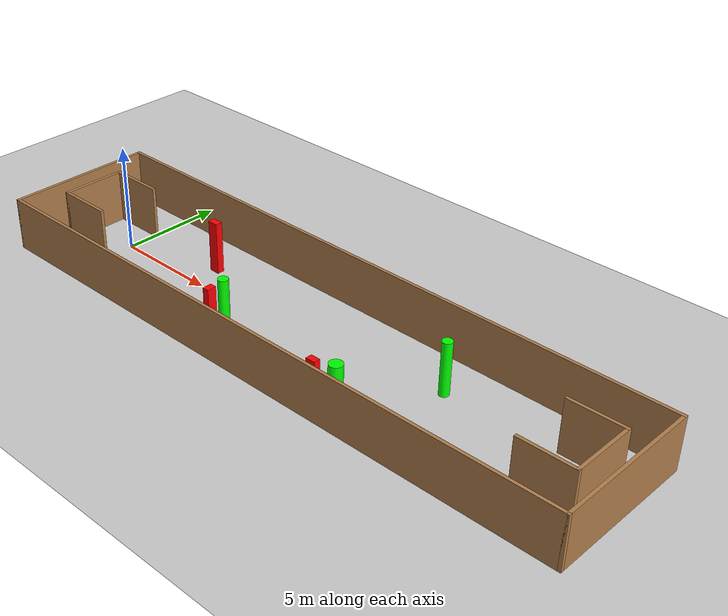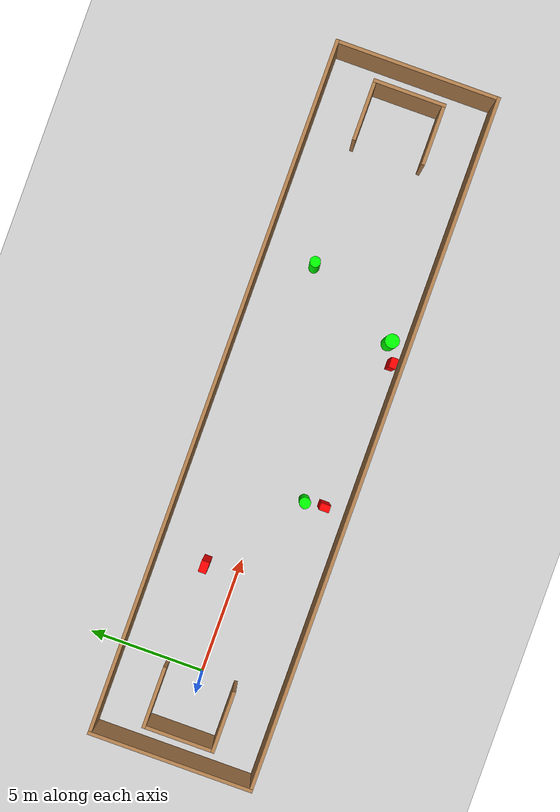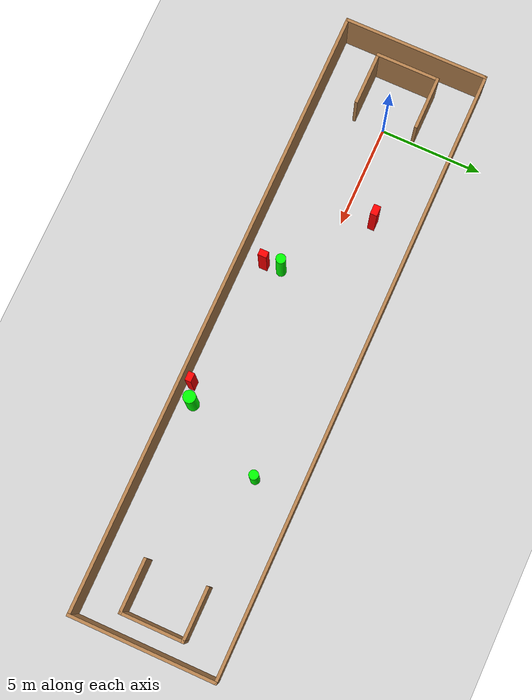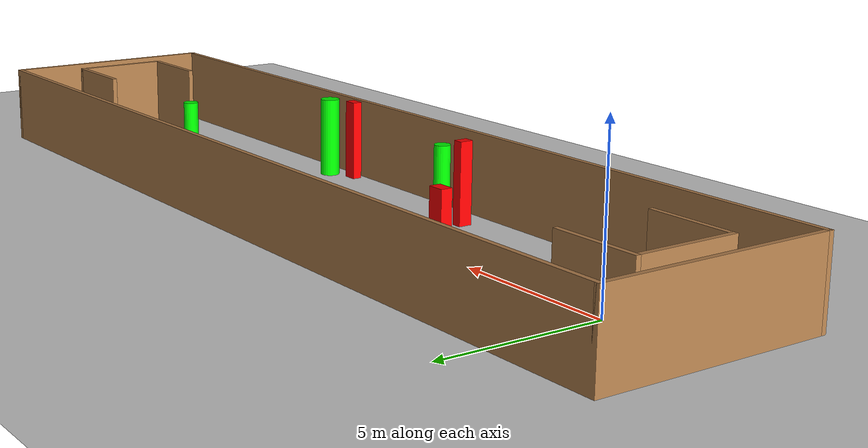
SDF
<sdf version="1.7">
 <world name="default">
  <light name="sun" type="directional">
   <pose>0 0 10 0 -0 0</pose>
   <diffuse>0.8 0.8 0.8 1</diffuse>
   <specular>0.2 0.2 0.2 1</specular>
   <attenuation>
    <range>1000</range>
    <constant>0.9</constant>
    <linear>0.01</linear>
    <quadratic>0.001</quadratic>
   </attenuation>
   <direction>-0.5 0.1 -0.9</direction>
   <spot><inner_angle>0</inner_angle><outer_angle>0</outer_angle><falloff>0</falloff></spot>
  </light>
  <model name="ground_plane">
   <static>1</static>
   <link name="link">
    <collision name="collision">
     <geometry><plane><normal>0 0 1</normal><size>100 100</size></plane></geometry>
     <surface>
      <contact><collide_bitmask>65535</collide_bitmask></contact>
      <friction><ode><mu>100</mu><mu2>50</mu2></ode></friction>
     </surface>
    </collision>
    <visual name="visual">
     <cast_shadows>0</cast_shadows>
     <geometry><plane><normal>0 0 1</normal><size>100 100</size></plane></geometry>
     <material>
      <script><uri>file://media/materials/scripts/gazebo.material</uri><name>Gazebo/Grey</name></script>
     </material>
    </visual>
   </link>
  </model>
  <gravity>0 0 -9.8</gravity>
  <magnetic_field>6e-06 2.3e-05 -4.2e-05</magnetic_field>
  <atmosphere type="adiabatic"/>
  <physics type="ode">
   <max_step_size>0.001</max_step_size>
   <real_time_factor>1</real_time_factor>
   <real_time_update_rate>1000</real_time_update_rate>
  </physics>
  <scene><ambient>0.4 0.4 0.4 1</ambient><background>0.7 0.7 0.7 1</background><shadows>1</shadows></scene>
  <spherical_coordinates>
   <surface_model>EARTH_WGS84</surface_model>
   <latitude_deg>0</latitude_deg>
   <longitude_deg>0</longitude_deg>
   <elevation>0</elevation>
   <heading_deg>0</heading_deg>
  </spherical_coordinates>
  <model name="my_base_walls">
   <link name="Wall_0">
    <collision name="Wall_0_Collision">
     <geometry><box><size>7.15 0.15 2.5</size></box></geometry>
     <pose>0 0 1.25 0 -0 0</pose>
    </collision>
    <visual name="Wall_0_Visual">
     <pose>0 0 1.25 0 -0 0</pose>
     <geometry><box><size>7.15 0.15 2.5</size></box></geometry>
     <material>
      <script><uri>file://media/materials/scripts/gazebo.material</uri><name>Gazebo/Wood</name></script>
      <ambient>1 1 1 1</ambient>
     </material>
     <meta><layer>0</layer></meta>
    </visual>
    <pose>-15 0 0 0 -0 1.5708</pose>
   </link>
   <link name="Wall_10">
    <collision name="Wall_10_Collision">
     <geometry><box><size>2.65 0.15 2.5</size></box></geometry>
     <pose>0 0 1.25 0 -0 0</pose>
    </collision>
    <visual name="Wall_10_Visual">
     <pose>0 0 1.25 0 -0 0</pose>
     <geometry><box><size>2.65 0.15 2.5</size></box></geometry>
     <material>
      <script><uri>file://media/materials/scripts/gazebo.material</uri><name>Gazebo/Wood</name></script>
      <ambient>1 1 1 1</ambient>
     </material>
     <meta><layer>0</layer></meta>
    </visual>
    <pose>-12.75 -1.5 0 0 -0 0</pose>
   </link>
   <link name="Wall_12">
    <collision name="Wall_12_Collision">
     <geometry><box><size>2.65 0.15 2.5</size></box></geometry>
     <pose>0 0 1.25 0 -0 0</pose>
    </collision>
    <visual name="Wall_12_Visual">
     <pose>0 0 1.25 0 -0 0</pose>
     <geometry><box><size>2.65 0.15 2.5</size></box></geometry>
     <material>
      <script><uri>file://media/materials/scripts/gazebo.material</uri><name>Gazebo/Wood</name></script>
      <ambient>1 1 1 1</ambient>
     </material>
     <meta><layer>0</layer></meta>
    </visual>
    <pose>-12.75 1.5 0 0 -0 0</pose>
   </link>
   <link name="Wall_14">
    <collision name="Wall_14_Collision">
     <geometry><box><size>3.15 0.15 2.5</size></box></geometry>
     <pose>0 0 1.25 0 -0 0</pose>
    </collision>
    <visual name="Wall_14_Visual">
     <pose>0 0 1.25 0 -0 0</pose>
     <geometry><box><size>3.15 0.15 2.5</size></box></geometry>
     <material>
      <script><uri>file://media/materials/scripts/gazebo.material</uri><name>Gazebo/Wood</name></script>
      <ambient>1 1 1 1</ambient>
     </material>
     <meta><layer>0</layer></meta>
    </visual>
    <pose>14 0 0 0 -0 -1.5708</pose>
   </link>
   <link name="Wall_15">
    <collision name="Wall_15_Collision">
     <geometry><box><size>2.65 0.15 2.5</size></box></geometry>
     <pose>0 0 1.25 0 -0 0</pose>
    </collision>
    <visual name="Wall_15_Visual">
     <pose>0 0 1.25 0 -0 0</pose>
     <geometry><box><size>2.65 0.15 2.5</size></box></geometry>
     <material>
      <script><uri>file://media/materials/scripts/gazebo.material</uri><name>Gazebo/Wood</name></script>
      <ambient>1 1 1 1</ambient>
     </material>
     <meta><layer>0</layer></meta>
    </visual>
    <pose>12.75 -1.5 0 0 -0 3.14159</pose>
   </link>
   <link name="Wall_17">
    <collision name="Wall_17_Collision">
     <geometry><box><size>2.65 0.15 2.5</size></box></geometry>
     <pose>0 0 1.25 0 -0 0</pose>
    </collision>
    <visual name="Wall_17_Visual">
     <pose>0 0 1.25 0 -0 0</pose>
     <geometry><box><size>2.65 0.15 2.5</size></box></geometry>
     <material>
      <script><uri>file://media/materials/scripts/gazebo.material</uri><name>Gazebo/Wood</name></script>
      <ambient>1 1 1 1</ambient>
     </material>
     <meta><layer>0</layer></meta>
    </visual>
    <pose>12.75 1.5 0 0 -0 3.14159</pose>
   </link>
   <link name="Wall_2">
    <collision name="Wall_2_Collision">
     <geometry><box><size>30.15 0.15 2.5</size></box></geometry>
     <pose>0 0 1.25 0 -0 0</pose>
    </collision>
    <visual name="Wall_2_Visual">
     <pose>0 0 1.25 0 -0 0</pose>
     <geometry><box><size>30.15 0.15 2.5</size></box></geometry>
     <material>
      <script><uri>file://media/materials/scripts/gazebo.material</uri><name>Gazebo/Wood</name></script>
      <ambient>1 1 1 1</ambient>
     </material>
     <meta><layer>0</layer></meta>
    </visual>
    <pose>-0 -3.5 0 0 -0 0</pose>
   </link>
   <link name="Wall_4">
    <collision name="Wall_4_Collision">
     <geometry><box><size>30.15 0.15 2.5</size></box></geometry>
     <pose>0 0 1.25 0 -0 0</pose>
    </collision>
    <visual name="Wall_4_Visual">
     <pose>0 0 1.25 0 -0 0</pose>
     <geometry><box><size>30.15 0.15 2.5</size></box></geometry>
     <material>
      <script><uri>file://media/materials/scripts/gazebo.material</uri><name>Gazebo/Wood</name></script>
      <ambient>1 1 1 1</ambient>
     </material>
     <meta><layer>0</layer></meta>
    </visual>
    <pose>-0 3.5 0 0 -0 0</pose>
   </link>
   <link name="Wall_6">
    <collision name="Wall_6_Collision">
     <geometry><box><size>7.15 0.15 2.5</size></box></geometry>
     <pose>0 0 1.25 0 -0 0</pose>
    </collision>
    <visual name="Wall_6_Visual">
     <pose>0 0 1.25 0 -0 0</pose>
     <geometry><box><size>7.15 0.15 2.5</size></box></geometry>
     <material>
      <script><uri>file://media/materials/scripts/gazebo.material</uri><name>Gazebo/Wood</name></script>
      <ambient>1 1 1 1</ambient>
     </material>
     <meta><layer>0</layer></meta>
    </visual>
    <pose>15 0 0 0 -0 -1.5708</pose>
   </link>
   <link name="Wall_9">
    <collision name="Wall_9_Collision">
     <geometry><box><size>3.15 0.15 2.5</size></box></geometry>
     <pose>0 0 1.25 0 -0 0</pose>
    </collision>
    <visual name="Wall_9_Visual">
     <pose>0 0 1.25 0 -0 0</pose>
     <geometry><box><size>3.15 0.15 2.5</size></box></geometry>
     <material>
      <script><uri>file://media/materials/scripts/gazebo.material</uri><name>Gazebo/Wood</name></script>
      <ambient>1 1 1 1</ambient>
     </material>
     <meta><layer>0</layer></meta>
    </visual>
    <pose>-14 0 0 0 -0 -1.5708</pose>
   </link>
   <static>1</static>
   <pose>11.5 0 0 0 -0 0</pose>
  </model>
  <model name="cylinder1">
   <static>1</static>
   <link name="link">
    <inertial>
     <mass>1</mass>
     <inertia><ixx>0.5</ixx><ixy>0</ixy><ixz>0</ixz><iyy>0.5</iyy><iyz>0</iyz><izz>1</izz></inertia>
    </inertial>
    <collision name="collision">
     <geometry><cylinder><radius>0.3026384209840558</radius><length>2.5</length></cylinder></geometry>
    </collision>
    <visual name="visual">
     <geometry><cylinder><radius>0.3026384209840558</radius><length>2.5</length></cylinder></geometry>
     <material>
      <ambient>0 1 0 1</ambient>
      <diffuse>0 1 0 1</diffuse>
      <specular>0.1 0.1 0.1 1</specular>
      <emissive>0 0 0 0</emissive>
     </material>
    </visual>
   </link>
   <pose>15.728955174389275 -2.745362397604776 1.25 0 0 0</pose>
  </model>
  <model name="cylinder2">
   <static>1</static>
   <link name="link">
    <inertial>
     <mass>1</mass>
     <inertia><ixx>0.5</ixx><ixy>0</ixy><ixz>0</ixz><iyy>0.5</iyy><iyz>0</iyz><izz>1</izz></inertia>
    </inertial>
    <collision name="collision">
     <geometry><cylinder><radius>0.22928234608246706</radius><length>2.5</length></cylinder></geometry>
    </collision>
    <visual name="visual">
     <geometry><cylinder><radius>0.22928234608246706</radius><length>2.5</length></cylinder></geometry>
     <material>
      <ambient>0 1 0 1</ambient>
      <diffuse>0 1 0 1</diffuse>
      <specular>0.1 0.1 0.1 1</specular>
      <emissive>0 0 0 0</emissive>
     </material>
    </visual>
   </link>
   <pose>17.71841221162075 1.3055636877647752 1.25 0 0 0</pose>
  </model>
  <model name="cylinder3">
   <static>1</static>
   <link name="link">
    <inertial>
     <mass>1</mass>
     <inertia><ixx>0.5</ixx><ixy>0</ixy><ixz>0</ixz><iyy>0.5</iyy><iyz>0</iyz><izz>1</izz></inertia>
    </inertial>
    <collision name="collision">
     <geometry><cylinder><radius>0.23959691132447097</radius><length>2.5</length></cylinder></geometry>
    </collision>
    <visual name="visual">
     <geometry><cylinder><radius>0.23959691132447097</radius><length>2.5</length></cylinder></geometry>
     <material>
      <ambient>0 1 0 1</ambient>
      <diffuse>0 1 0 1</diffuse>
      <specular>0.1 0.1 0.1 1</specular>
      <emissive>0 0 0 0</emissive>
     </material>
    </visual>
   </link>
   <pose>8.301963356561457 -1.6242512492918983 1.25 0 0 0</pose>
  </model>
  <model name="box1">
   <static>1</static>
   <link name="link">
    <inertial>
     <mass>1</mass>
     <inertia><ixx>0.083</ixx><ixy>0</ixy><ixz>0</ixz><iyy>0.083</iyy><iyz>0</iyz><izz>0.083</izz></inertia>
    </inertial>
    <collision name="collision">
     <geometry><box><size>0.4383946003774381 0.3002589886790101 2.5</size></box></geometry>
    </collision>
    <visual name="visual">
     <geometry><box><size>0.4383946003774381 0.3002589886790101 2.5</size></box></geometry>
     <material>
      <ambient>1 0 0 1</ambient>
      <diffuse>1 0 0 1</diffuse>
      <specular>0.1 0.1 0.1 1</specular>
      <emissive>0 0 0 0</emissive>
     </material>
    </visual>
    <sensor name="my_contact" type="contact">
     <contact><collision>box_collision</collision><topic>__default_topic__</topic></contact>
    </sensor>
   </link>
   <pose>14.899516129271154 -3.1087200816870793 1.25 0 0 0</pose>
  </model>
  <model name="box2">
   <static>1</static>
   <link name="link">
    <inertial>
     <mass>1</mass>
     <inertia><ixx>0.083</ixx><ixy>0</ixy><ixz>0</ixz><iyy>0.083</iyy><iyz>0</iyz><izz>0.083</izz></inertia>
    </inertial>
    <collision name="collision">
     <geometry><box><size>0.49559192882010844 0.33954157598176443 2.5</size></box></geometry>
    </collision>
    <visual name="visual">
     <geometry><box><size>0.49559192882010844 0.33954157598176443 2.5</size></box></geometry>
     <material>
      <ambient>1 0 0 1</ambient>
      <diffuse>1 0 0 1</diffuse>
      <specular>0.1 0.1 0.1 1</specular>
      <emissive>0 0 0 0</emissive>
     </material>
    </visual>
    <sensor name="my_contact" type="contact">
     <contact><collision>box_collision</collision><topic>__default_topic__</topic></contact>
    </sensor>
   </link>
   <pose>4.454188461990139 1.3868672533651996 1.25 0 0 0</pose>
  </model>
  <model name="box3">
   <static>1</static>
   <link name="link">
    <inertial>
     <mass>1</mass>
     <inertia><ixx>0.083</ixx><ixy>0</ixy><ixz>0</ixz><iyy>0.083</iyy><iyz>0</iyz><izz>0.083</izz></inertia>
    </inertial>
    <collision name="collision">
     <geometry><box><size>0.31101510932557597 0.4249254757974159 2.5</size></box></geometry>
    </collision>
    <visual name="visual">
     <geometry><box><size>0.31101510932557597 0.4249254757974159 2.5</size></box></geometry>
     <material>
      <ambient>1 0 0 1</ambient>
      <diffuse>1 0 0 1</diffuse>
      <specular>0.1 0.1 0.1 1</specular>
      <emissive>0 0 0 0</emissive>
     </material>
    </visual>
    <sensor name="my_contact" type="contact">
     <contact><collision>box_collision</collision><topic>__default_topic__</topic></contact>
    </sensor>
   </link>
   <pose>8.395642540865214 -2.4540556044802826 1.25 0 0 0</pose>
  </model>
 </world>
</sdf>
